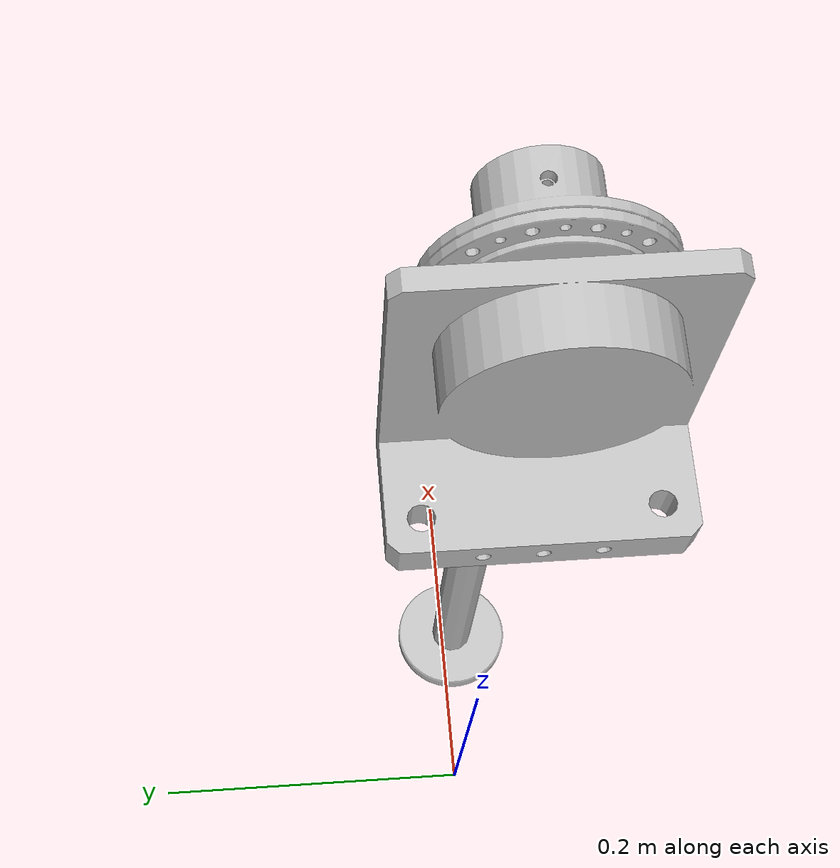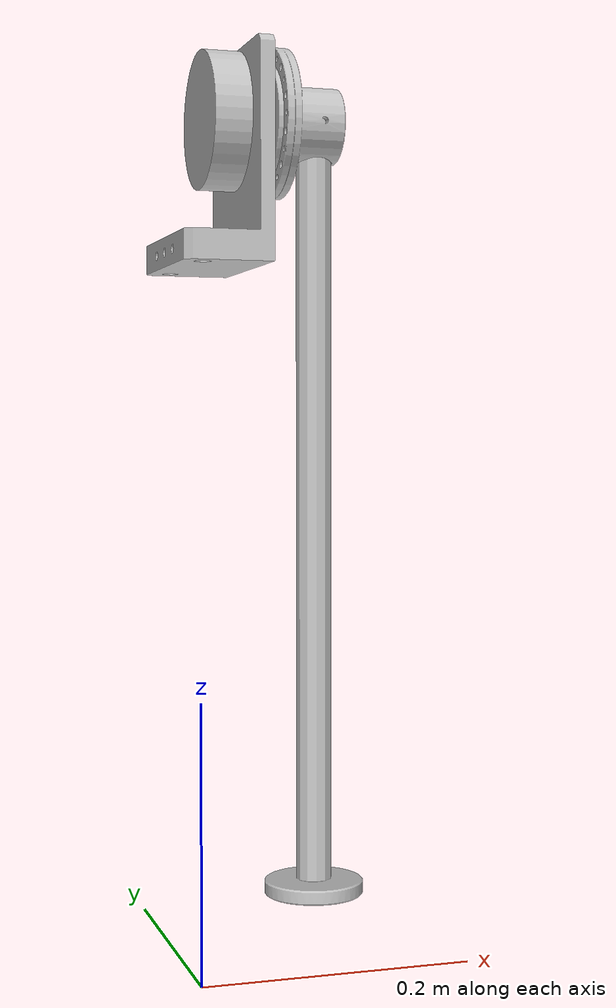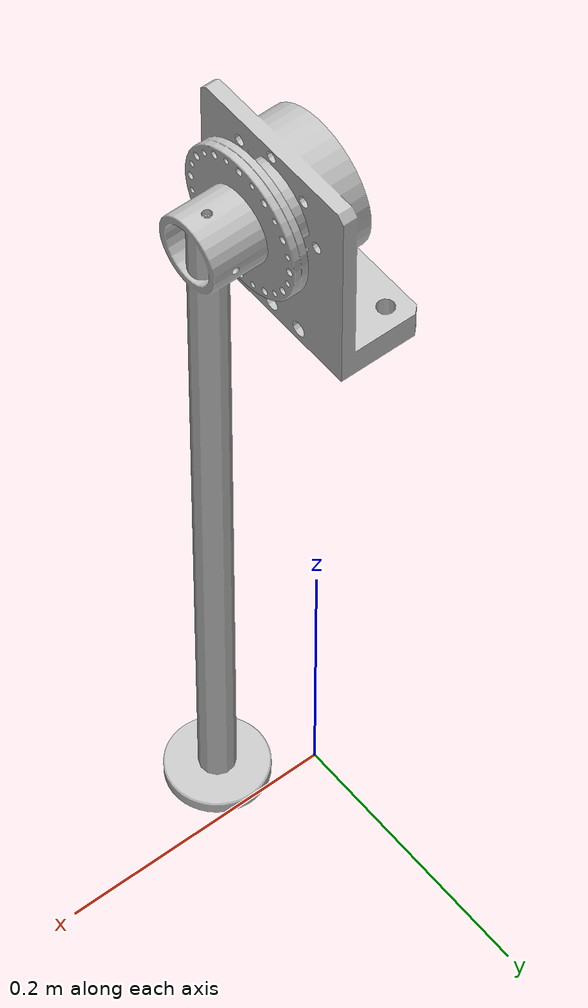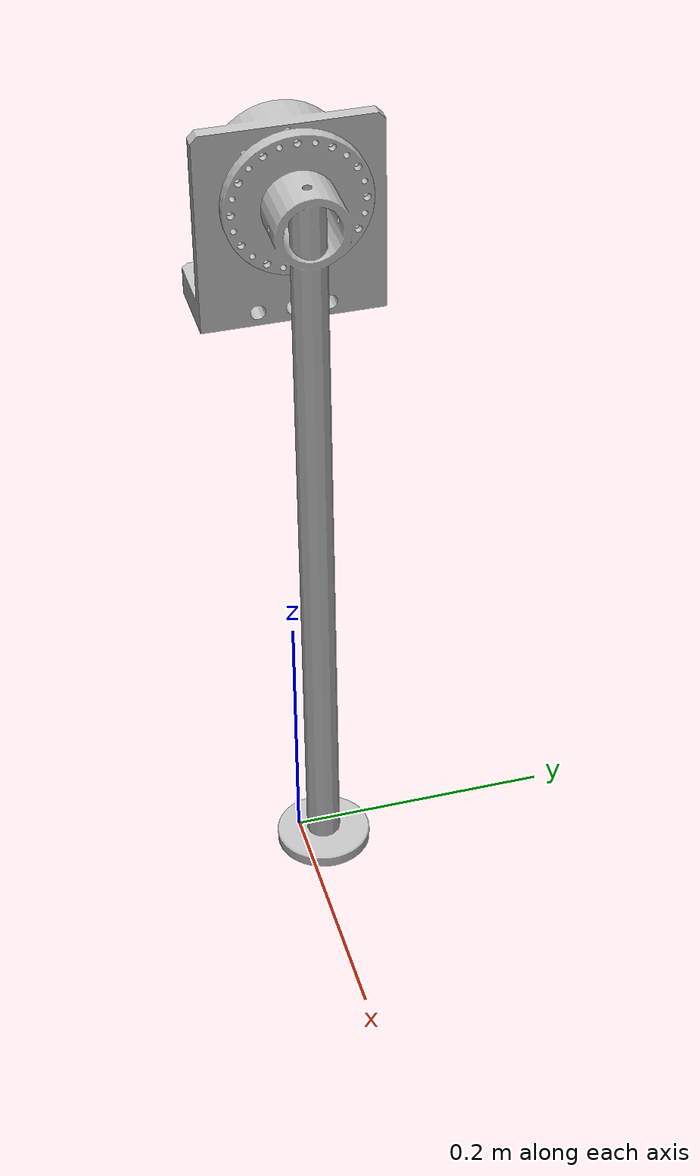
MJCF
<mujoco model="oneLink">
  <compiler angle="radian" meshdir="../assets/"/>

  <asset>
    <mesh name="base" file="base.STL"/>
    <mesh name="link1" file="link1.STL"/>
    <material name="wood_mat" rgba="0.2 0.2 0.2 1" specular="0.1" shininess="0.5" reflectance="0.1"/>
  </asset>

  <contact>
    <exclude body1="torso" body2="link1"/>
  </contact>

  <worldbody>
    <body name="torso" pos="0 0.0 0.6" euler="0 0 0">
      <geom type="mesh" rgba="0.7529 0.7529 0.7529 1" mesh="base"/>
      <body name="link1" pos="0.0426 0 0">
        <inertial pos="0.0426 0 -0.211027" quat="1 0 0 0" mass="1.13355" diaginertia="0.0442953 0.0442502 0.000408361"/>
        <joint name="joint1" type="hinge" pos="0.0426 0 0" axis="1 0 0" damping="0.0" range="-6.2832 6.2832" actuatorfrcrange="-100 100"/>
        <geom type="mesh" rgba="0.75294 0.75294 0.75294 1" mesh="link1"/>
        <site name="EE" pos="0.039 0 -0.539" rgba="1 0 0 1" size="0.001" />
      </body>
    </body>
  </worldbody>

  <actuator>
    <position name="motor1" joint="joint1" kp="1000" dampratio="1.0"/>
  </actuator>
  <sensor>
    <framepos name="eePos" objtype="site" objname="EE"/>
    <framequat name="eeQuat" objtype="site" objname="EE"/>
    <framelinvel name="eeLinVel" objtype="site" objname="EE"/>
    <frameangvel name="eeAngVel" objtype="site" objname="EE"/>
    <velocimeter name="eeVel" site="EE"/>
    <gyro name="eeGyro" site="EE"/>
    <accelerometer name="eeAcc" site="EE"/>
    <force name="eeForce" site="EE"/>
    <torque name="eeTorque" site="EE"/>
  </sensor>

  <keyframe>
    <key name="home" qpos="0" ctrl="0"/>
    <key name="standby1" qpos="1.57079" ctrl="1.57079"/>
    <key name="standby2" qpos="-1.57079" ctrl="-1.57079"/>
    <key name="standby3" qpos="-3.1415926" ctrl="-3.1415926"/>
  </keyframe>
</mujoco>
